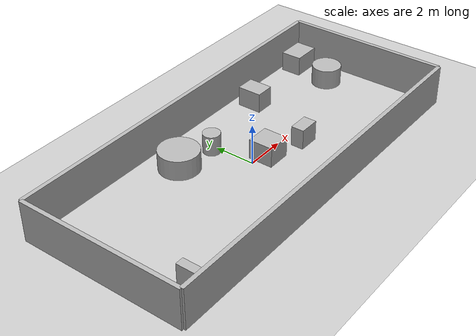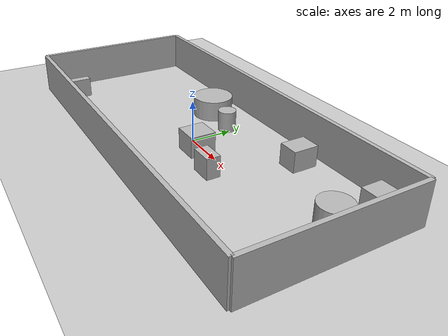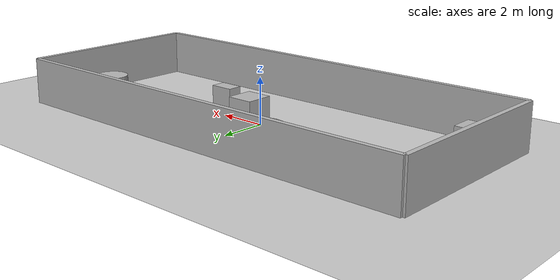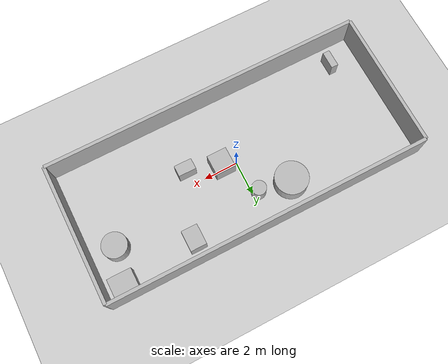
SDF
<?xml version="1.0"?>
<sdf version="1.6">
  <world name="env_82">

    <include><uri>model://ground_plane</uri></include>
    <include><uri>model://sun</uri></include>

    <!-- WALLS -->
    <model name="wall_north"><static>true</static><pose>0 4.086684855521979 1 0 0 0</pose>
      <link name="link"><collision name="collision">
        <geometry><box><size>19.153743925029282 0.2 2</size></box></geometry>
      </collision><visual name="visual">
        <geometry><box><size>19.153743925029282 0.2 2</size></box></geometry>
      </visual></link>
    </model>

    <model name="wall_south"><static>true</static><pose>0 -4.086684855521979 1 0 0 0</pose>
      <link name="link"><collision name="collision">
        <geometry><box><size>19.153743925029282 0.2 2</size></box></geometry>
      </collision><visual name="visual">
        <geometry><box><size>19.153743925029282 0.2 2</size></box></geometry>
      </visual></link>
    </model>

    <model name="wall_east"><static>true</static><pose>9.576871962514641 0 1 0 0 1.57</pose>
      <link name="link"><collision name="collision">
        <geometry><box><size>8.173369711043957 0.2 2</size></box></geometry>
      </collision><visual name="visual">
        <geometry><box><size>8.173369711043957 0.2 2</size></box></geometry>
      </visual></link>
    </model>

    <model name="wall_west"><static>true</static><pose>-9.576871962514641 0 1 0 0 1.57</pose>
      <link name="link"><collision name="collision">
        <geometry><box><size>8.173369711043957 0.2 2</size></box></geometry>
      </collision><visual name="visual">
        <geometry><box><size>8.173369711043957 0.2 2</size></box></geometry>
      </visual></link>
    </model>

    <!-- SENSOR -->

    <model name="lidar_sensor">
      <static>true</static>
      <pose>-8.990102504279601 0.37294034633567774 0.4 0 0 0</pose>
      <link name="link">
        <sensor name="lidar" type="ray">
          <pose>0 0 0 0 0 0</pose>
          <visualize>true</visualize>
          <always_on>true</always_on>
          <update_rate>10</update_rate>
          <ray>
            <scan><horizontal>
              <samples>90</samples>
              <resolution>1</resolution>
              <min_angle>-3.14159</min_angle>
              <max_angle>3.14159</max_angle>
            </horizontal></scan>
            <range><min>0.15</min><max>20.0</max><resolution>0.01</resolution></range>
          </ray>
          <plugin name="lidar_plugin" filename="liblidar_plugin.so"/>
        </sensor>
      </link>
    </model>

    <!-- OBSTACLES -->

    <model name="obstacle_0">
      <static>true</static>
      <pose>0.8268255241820839 -0.24274730058894756 0.5 0 0 0</pose>
      <link name="link">
        <collision name="collision">
          <geometry><box><size>1.17 1.22 1.0</size></box></geometry>
        </collision>
        <visual name="visual">
          <geometry><box><size>1.17 1.22 1.0</size></box></geometry>
        </visual>
      </link>
    </model>

    <model name="obstacle_1">
      <static>true</static>
      <pose>4.081216851816526 2.892230773898624 0.5 0 0 0</pose>
      <link name="link">
        <collision name="collision">
          <geometry><box><size>0.95 1.22 1.0</size></box></geometry>
        </collision>
        <visual name="visual">
          <geometry><box><size>0.95 1.22 1.0</size></box></geometry>
        </visual>
      </link>
    </model>

    <model name="obstacle_2">
      <static>true</static>
      <pose>-7.728251747325197 -2.8653217125281882 0.5 0 0 0</pose>
      <link name="link">
        <collision name="collision">
          <geometry><box><size>0.42 1.04 1.0</size></box></geometry>
        </collision>
        <visual name="visual">
          <geometry><box><size>0.42 1.04 1.0</size></box></geometry>
        </visual>
      </link>
    </model>

    <model name="obstacle_3">
      <static>true</static>
      <pose>-2.197164561648509 2.4036048340757894 0.5 0 0 0</pose>
      <link name="link">
        <collision name="collision">
          <geometry><cylinder><radius>0.98</radius><length>1.0</length></cylinder></geometry>
        </collision>
        <visual name="visual">
          <geometry><cylinder><radius>0.98</radius><length>1.0</length></cylinder></geometry>
        </visual>
      </link>
    </model>

    <model name="obstacle_4">
      <static>true</static>
      <pose>8.023661669461905 1.289952882188583 0.5 0 0 0</pose>
      <link name="link">
        <collision name="collision">
          <geometry><cylinder><radius>0.73</radius><length>1.0</length></cylinder></geometry>
        </collision>
        <visual name="visual">
          <geometry><cylinder><radius>0.73</radius><length>1.0</length></cylinder></geometry>
        </visual>
      </link>
    </model>

    <model name="obstacle_5">
      <static>true</static>
      <pose>-0.320524824505501 2.075047870380409 0.5 0 0 0</pose>
      <link name="link">
        <collision name="collision">
          <geometry><cylinder><radius>0.43</radius><length>1.0</length></cylinder></geometry>
        </collision>
        <visual name="visual">
          <geometry><cylinder><radius>0.43</radius><length>1.0</length></cylinder></geometry>
        </visual>
      </link>
    </model>

    <model name="obstacle_6">
      <static>true</static>
      <pose>2.7703143278003672 -0.8526101911522592 0.5 0 0 0</pose>
      <link name="link">
        <collision name="collision">
          <geometry><box><size>1.04 0.65 1.0</size></box></geometry>
        </collision>
        <visual name="visual">
          <geometry><box><size>1.04 0.65 1.0</size></box></geometry>
        </visual>
      </link>
    </model>

    <model name="obstacle_7">
      <static>true</static>
      <pose>8.445652294609403 3.2928637124474465 0.5 0 0 0</pose>
      <link name="link">
        <collision name="collision">
          <geometry><box><size>1.4 1.05 1.0</size></box></geometry>
        </collision>
        <visual name="visual">
          <geometry><box><size>1.4 1.05 1.0</size></box></geometry>
        </visual>
      </link>
    </model>

  </world>
</sdf>
